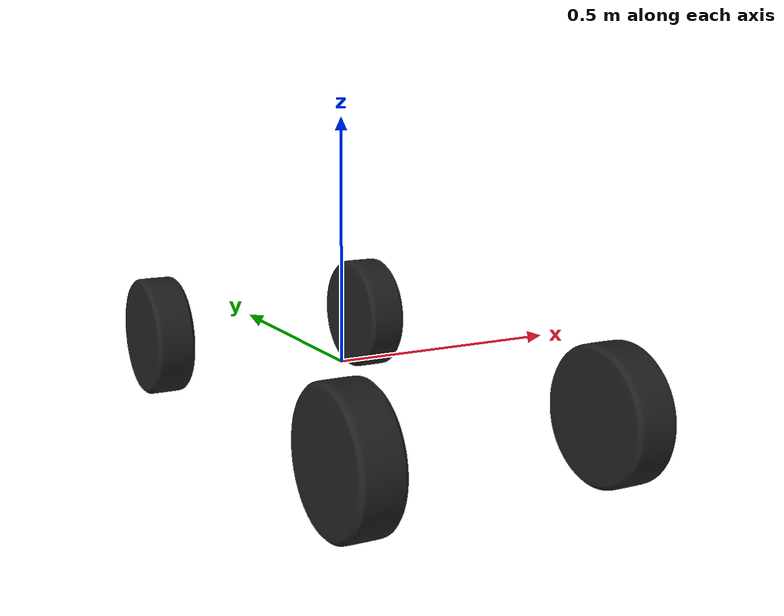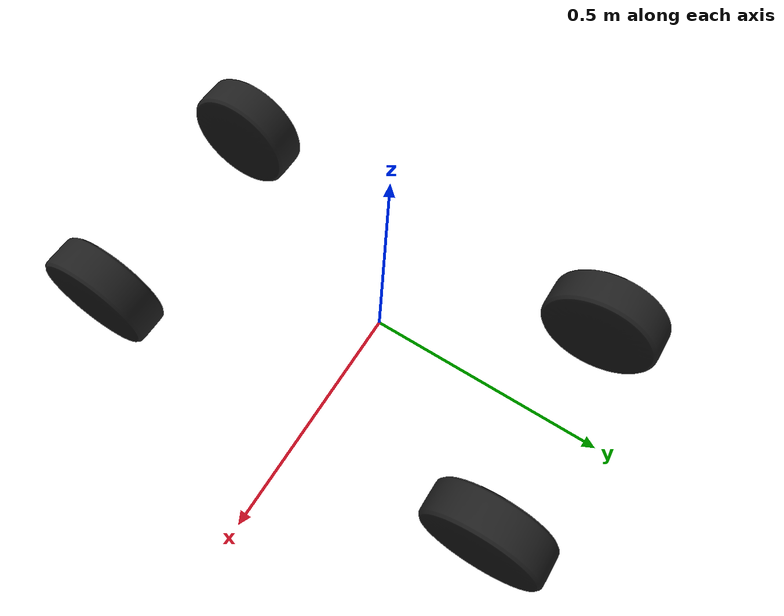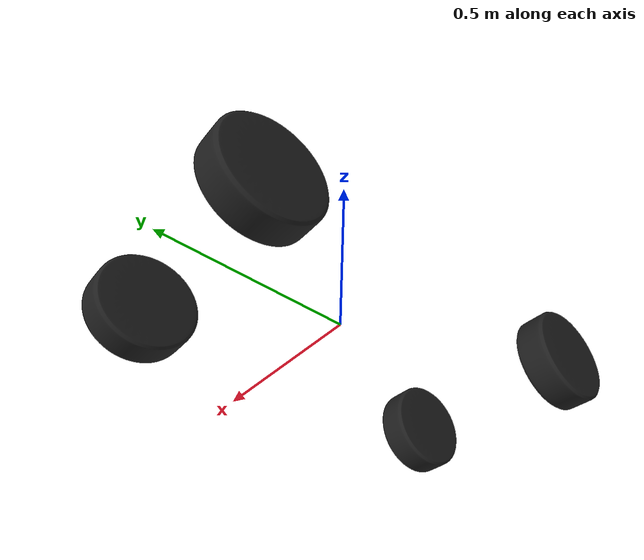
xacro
<?xml version="1.0"?>
<robot name="minimal" xmlns:xacro="http://www.ros.org/wiki/xacro">
  <xacro:property name="M_PI" value="3.1415926535897931"/>
  <xacro:property name="wheel_radius" value="0.13"/>
  <xacro:property name="wheel_length" value="0.085"/>
  <xacro:property name="wheel_side_pos" value="0.26"/>
  <xacro:property name="wheel_front_pos" value="0.40"/>
  <xacro:property name="wheel_rear_pos" value="-0.51"/>

  <xacro:include filename="$(find minimal)/urdf/axle.urdf.xacro"/>

  <link name="base_link">
  </link>
  <joint name="base_link_to_chassis" type="fixed">
    <parent link="base_link"/>
    <child link="chassis"/>
    <origin xyz="0 0 0" rpy="0 0 0"/>
  </joint>
  <link name="chassis">
    <inertial>
      <mass value="88.0"/> <!-- unit: kg -->
      <origin xyz="0.000000 -0.069829 0.324532" rpy="0 0 0"/>
      <inertia ixx="0.040721" ixy="0" ixz="0" iyy="0.016682" iyz="-0.002478" izz="0.038922"/>
    </inertial>
  </link> <!-- end chassis -->

  <xacro:front_wheel lr_prefix="left" fr_prefix="front"
                     lr_reflect="1" fr_reflect="1"/>
  <xacro:front_wheel lr_prefix="right" fr_prefix="front"
                     lr_reflect="-1" fr_reflect="1"/>
  <xacro:rear_wheel lr_prefix="left" fr_prefix="rear"
                    lr_reflect="1" fr_reflect="-1"/>
  <xacro:rear_wheel lr_prefix="right" fr_prefix="rear"
                    lr_reflect="-1" fr_reflect="-1"/>

  <gazebo>
    <plugin name="gazebo_ros_control" filename="libgazebo_ros_control.so">
      <robotNamespace>/minimal</robotNamespace>
      <robotParam>robot_description</robotParam>
      <controlPeriod>0.001</controlPeriod>
    </plugin>
  </gazebo> <!-- end plugin gazebo_ros_control -->
</robot>

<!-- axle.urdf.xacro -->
<robot name="minimal_axle" xmlns:xacro="http://ros.org/wiki/xacro">

  <xacro:property name="wheel_joint_damping" value="0.2" />
  <xacro:property name="wheel_joint_friction" value="0.7" />

  <xacro:property name="axle_length" value="0.52" />
  <xacro:property name="axle_effort_limit" value="20.1851"/>
  <xacro:property name="axle_velocity_limit" value="12.85"/>

  <xacro:property name="tire_radius" value="0.13"/>
  <xacro:property name="tire_width" value="0.085"/>
  <xacro:property name="degree_10" value="0.17"/>

  <!-- null inertial element. This is needed to make the model work with gazebo  -->
  <xacro:macro name="null_inertial">
    <inertial>
      <mass value="0.001"/>
      <inertia ixx="0.001" ixy="0.0" ixz="0.0" iyy="0.001" iyz="0.0" izz="0.001"/>
      <origin xyz="0.0 0.0 0.0" rpy="0 0 0"/>
    </inertial>
  </xacro:macro>

  <xacro:macro name="wheel" params="lr_prefix fr_prefix lr_reflect">

    <link name="${lr_prefix}_${fr_prefix}_axle_carrier">
      <xacro:null_inertial />
    </link>

    <joint name="${lr_prefix}_${fr_prefix}_axle" type="continuous">
      <parent link="${lr_prefix}_${fr_prefix}_axle_carrier"/>
      <child link="${lr_prefix}_${fr_prefix}_wheel"/>
      <origin xyz="0 0 0" rpy="0 ${M_PI/2} 0"/>
      <axis xyz="0 0 1"/>
      <limit effort="${axle_effort_limit}" velocity="${axle_velocity_limit}"/>
      <joint_properties damping="${wheel_joint_damping}" friction="${wheel_joint_friction}"/>
    </joint>

    <transmission name="${lr_prefix}_${fr_prefix}_axle_trans">
      <type>transmission_interface/SimpleTransmission</type>
      <joint name="${lr_prefix}_${fr_prefix}_axle">
        <hardwareInterface>hardware_interface/VelocityJointInterface</hardwareInterface>
      </joint>
      <actuator name="${lr_prefix}_${fr_prefix}_axle_act">
        <mechanicalReduction>1</mechanicalReduction>
      </actuator>
    </transmission>

    <link name="${lr_prefix}_${fr_prefix}_wheel">
      <visual>
        <origin xyz="0 0 0" rpy="0 ${M_PI/2} 0"/>
        <geometry>
          <mesh filename="package://minimal/meshes/wheel.dae" scale="1.00 1.00 1.00"/>
        </geometry>
      </visual>

      <collision>
        <origin xyz="0
                     0
                     0" />
        <geometry>
          <cylinder length="${tire_width}" radius="${tire_radius}"/>
        </geometry>
      </collision>

      <inertial>
        <mass value="3.0"/> <!-- unit: kg -->
        <origin xyz="0.0 0.0 0.0" rpy="0 ${M_PI/2} 0"/>
        <inertia ixx="2.046366e-05" ixy="0.0" ixz="0.0" iyy="2.046366e-05" iyz="0.0" izz="3.586065e-05"/>
      </inertial>
    </link>

      <friction>
        <ode>
          <mu>1.0</mu>
          <mu2>1.0</mu2>
          <kp value="10000000.0" />
          <kd value="1.0"/>
          <fdir1>1 0 0 </fdir1>
          <minDepth>0.0</minDepth>
        </ode>
      </friction>
     <gazebo reference="${lr_prefix}_${fr_prefix}_wheel">
      <material>Gazebo/Black</material>
     </gazebo>
  </xacro:macro>

  <!-- Front wheel -->
  <xacro:macro name="front_wheel"
               params="lr_prefix fr_prefix lr_reflect fr_reflect">
    <link name="${lr_prefix}_steering_link">
      <xacro:null_inertial/>
    </link>

    <joint name="${lr_prefix}_${fr_prefix}_to_chassis" type="fixed">
      <parent link="chassis"/>
      <child link="${lr_prefix}_steering_link"/>
      <origin xyz="${lr_reflect * ((axle_length / 2) - axle_length)}
                   ${fr_reflect * 0.40}
                   0.0 "/>
      <axis xyz="0 0 1"/>
    </joint>

    <joint name="${lr_prefix}_steering_joint" type="revolute">
      <parent link="${lr_prefix}_steering_link"/>
      <child link="${lr_prefix}_${fr_prefix}_axle_carrier"/>
      <origin xyz="0
                   0
                   0 "/>
      <axis xyz="0 0 1"/>
      <limit lower="${-degree_10}" upper="${degree_10}"
             effort="50" velocity="25"/>
    </joint>
    <transmission name="${lr_prefix}_steering_trans">
      <type>transmission_interface/SimpleTransmission</type>
      <joint name="${lr_prefix}_steering_joint">
        <hardwareInterface>hardware_interface/EffortJointInterface</hardwareInterface>
      </joint>
      <actuator name="${lr_prefix}_steering_act">
        <mechanicalReduction>1</mechanicalReduction>
      </actuator>
    </transmission>
    <xacro:wheel lr_prefix="${lr_prefix}" fr_prefix="${fr_prefix}"
                 lr_reflect="${lr_reflect}"/>
  </xacro:macro>
  <!-- rear wheel -->
  <xacro:macro name="rear_wheel"
               params="lr_prefix fr_prefix lr_reflect fr_reflect">

    <joint name="${lr_prefix}_${fr_prefix}_to_chassis" type="continuous">
      <parent link="chassis"/>
      <child link="${lr_prefix}_${fr_prefix}_axle_carrier"/>
      <origin xyz="${lr_reflect * ((axle_length / 2) - axle_length)}
                   ${fr_reflect * 0.54}
                   0.0"
              rpy="0
                   0
                   0"/>
      <axis xyz="1 0 0"/>
    </joint>

  <xacro:wheel lr_prefix="${lr_prefix}" fr_prefix="${fr_prefix}"
               lr_reflect="${lr_reflect}"/>
  </xacro:macro>
</robot>

<!--  LocalWords:  SimpleTransmission EffortJointInterface lr revolute
-->
